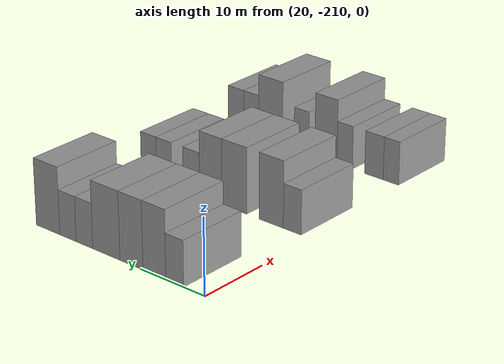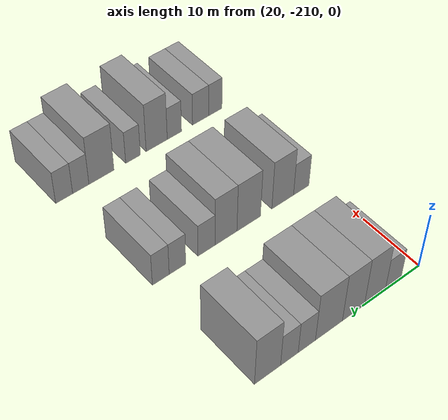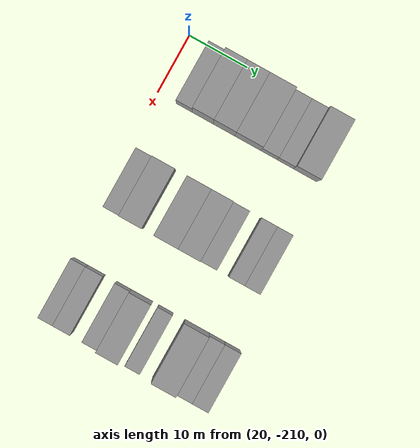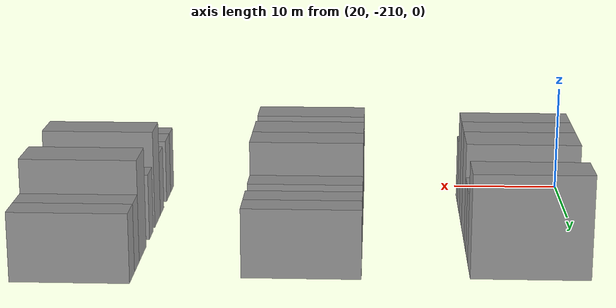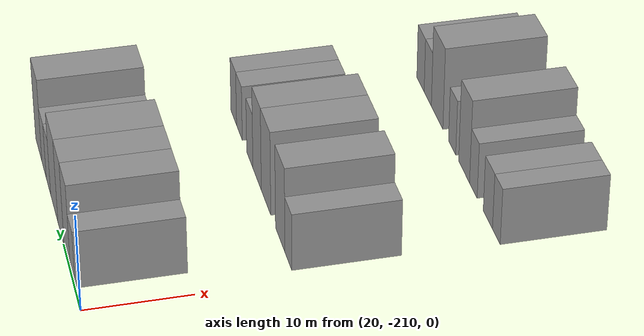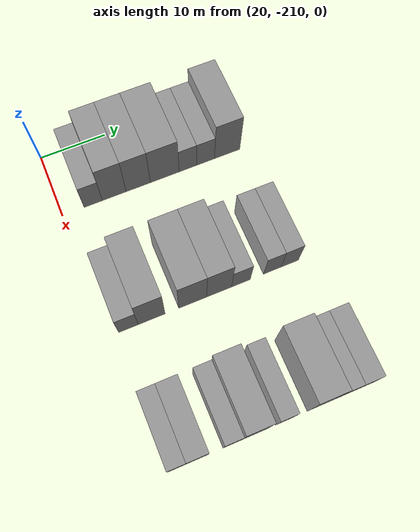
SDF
<sdf version="1.6">
 <world name="default">
  <model name="building_8">
   <static>1</static>
   <pose>25.0000 -205.3315 0 0.000000 0.000000 0.000000</pose>
   <link name="link">
    <pose>0 0 3.00 0 0 0</pose>
    <collision name="collision"><geometry><box><size>10.0000 2.7805 6.0000</size></box></geometry></collision>
    <visual name="visual">
     <cast_shadows>0</cast_shadows>
     <geometry><box><size>10.0000 2.7805 6.0000</size></box></geometry>
     <material>
      <script>
       <uri>model://grey_wall/materials/scripts</uri>
       <uri>model://grey_wall/materials/textures</uri>
       <name>vrc/grey_wall</name>
      </script>
     </material>
    </visual>
   </link>
  </model>
  <model name="building_9">
   <static>1</static>
   <pose>25.0000 -202.1189 0 0.000000 0.000000 0.000000</pose>
   <link name="link">
    <pose>0 0 4.50 0 0 0</pose>
    <collision name="collision"><geometry><box><size>10.0000 3.6448 9.0000</size></box></geometry></collision>
    <visual name="visual">
     <cast_shadows>0</cast_shadows>
     <geometry><box><size>10.0000 3.6448 9.0000</size></box></geometry>
     <material>
      <script>
       <uri>model://grey_wall/materials/scripts</uri>
       <uri>model://grey_wall/materials/textures</uri>
       <name>vrc/grey_wall</name>
      </script>
     </material>
    </visual>
   </link>
  </model>
  <model name="building_10">
   <static>1</static>
   <pose>25.0000 -198.4157 0 0.000000 0.000000 0.000000</pose>
   <link name="link">
    <pose>0 0 4.50 0 0 0</pose>
    <collision name="collision"><geometry><box><size>10.0000 3.7617 9.0000</size></box></geometry></collision>
    <visual name="visual">
     <cast_shadows>0</cast_shadows>
     <geometry><box><size>10.0000 3.7617 9.0000</size></box></geometry>
     <material>
      <script>
       <uri>model://grey_wall/materials/scripts</uri>
       <uri>model://grey_wall/materials/textures</uri>
       <name>vrc/grey_wall</name>
      </script>
     </material>
    </visual>
   </link>
  </model>
  <model name="building_11">
   <static>1</static>
   <pose>25.0000 -194.2861 0 0.000000 0.000000 0.000000</pose>
   <link name="link">
    <pose>0 0 4.50 0 0 0</pose>
    <collision name="collision"><geometry><box><size>10.0000 4.4974 9.0000</size></box></geometry></collision>
    <visual name="visual">
     <cast_shadows>0</cast_shadows>
     <geometry><box><size>10.0000 4.4974 9.0000</size></box></geometry>
     <material>
      <script>
       <uri>model://grey_wall/materials/scripts</uri>
       <uri>model://grey_wall/materials/textures</uri>
       <name>vrc/grey_wall</name>
      </script>
     </material>
    </visual>
   </link>
  </model>
  <model name="building_12">
   <static>1</static>
   <pose>25.0000 -190.6346 0 0.000000 0.000000 0.000000</pose>
   <link name="link">
    <pose>0 0 3.00 0 0 0</pose>
    <collision name="collision"><geometry><box><size>10.0000 2.8056 6.0000</size></box></geometry></collision>
    <visual name="visual">
     <cast_shadows>0</cast_shadows>
     <geometry><box><size>10.0000 2.8056 6.0000</size></box></geometry>
     <material>
      <script>
       <uri>model://grey_wall/materials/scripts</uri>
       <uri>model://grey_wall/materials/textures</uri>
       <name>vrc/grey_wall</name>
      </script>
     </material>
    </visual>
   </link>
  </model>
  <model name="building_13">
   <static>1</static>
   <pose>25.0000 -187.8267 0 0.000000 0.000000 0.000000</pose>
   <link name="link">
    <pose>0 0 3.00 0 0 0</pose>
    <collision name="collision"><geometry><box><size>10.0000 2.8101 6.0000</size></box></geometry></collision>
    <visual name="visual">
     <cast_shadows>0</cast_shadows>
     <geometry><box><size>10.0000 2.8101 6.0000</size></box></geometry>
     <material>
      <script>
       <uri>model://grey_wall/materials/scripts</uri>
       <uri>model://grey_wall/materials/textures</uri>
       <name>vrc/grey_wall</name>
      </script>
     </material>
    </visual>
   </link>
  </model>
  <model name="building_14">
   <static>1</static>
   <pose>25.0000 -184.3808 0 0.000000 0.000000 0.000000</pose>
   <link name="link">
    <pose>0 0 4.50 0 0 0</pose>
    <collision name="collision"><geometry><box><size>10.0000 4.0818 9.0000</size></box></geometry></collision>
    <visual name="visual">
     <cast_shadows>0</cast_shadows>
     <geometry><box><size>10.0000 4.0818 9.0000</size></box></geometry>
     <material>
      <script>
       <uri>model://grey_wall/materials/scripts</uri>
       <uri>model://grey_wall/materials/textures</uri>
       <name>vrc/grey_wall</name>
      </script>
     </material>
    </visual>
   </link>
  </model>
  <model name="building_122">
   <static>1</static>
   <pose>44.0000 -207.0543 0 0.000000 0.000000 0.000000</pose>
   <link name="link">
    <pose>0 0 3.00 0 0 0</pose>
    <collision name="collision"><geometry><box><size>10.0000 2.7970 6.0000</size></box></geometry></collision>
    <visual name="visual">
     <cast_shadows>0</cast_shadows>
     <geometry><box><size>10.0000 2.7970 6.0000</size></box></geometry>
     <material>
      <script>
       <uri>model://grey_wall/materials/scripts</uri>
       <uri>model://grey_wall/materials/textures</uri>
       <name>vrc/grey_wall</name>
      </script>
     </material>
    </visual>
   </link>
  </model>
  <model name="building_123">
   <static>1</static>
   <pose>44.0000 -203.7124 0 0.000000 0.000000 0.000000</pose>
   <link name="link">
    <pose>0 0 4.50 0 0 0</pose>
    <collision name="collision"><geometry><box><size>10.0000 3.8867 9.0000</size></box></geometry></collision>
    <visual name="visual">
     <cast_shadows>0</cast_shadows>
     <geometry><box><size>10.0000 3.8867 9.0000</size></box></geometry>
     <material>
      <script>
       <uri>model://grey_wall/materials/scripts</uri>
       <uri>model://grey_wall/materials/textures</uri>
       <name>vrc/grey_wall</name>
      </script>
     </material>
    </visual>
   </link>
  </model>
  <model name="building_124">
   <static>1</static>
   <pose>44.0000 -197.7276 0 0.000000 0.000000 0.000000</pose>
   <link name="link">
    <pose>0 0 4.50 0 0 0</pose>
    <collision name="collision"><geometry><box><size>10.0000 4.0828 9.0000</size></box></geometry></collision>
    <visual name="visual">
     <cast_shadows>0</cast_shadows>
     <geometry><box><size>10.0000 4.0828 9.0000</size></box></geometry>
     <material>
      <script>
       <uri>model://grey_wall/materials/scripts</uri>
       <uri>model://grey_wall/materials/textures</uri>
       <name>vrc/grey_wall</name>
      </script>
     </material>
    </visual>
   </link>
  </model>
  <model name="building_125">
   <static>1</static>
   <pose>44.0000 -193.8281 0 0.000000 0.000000 0.000000</pose>
   <link name="link">
    <pose>0 0 4.50 0 0 0</pose>
    <collision name="collision"><geometry><box><size>10.0000 3.7161 9.0000</size></box></geometry></collision>
    <visual name="visual">
     <cast_shadows>0</cast_shadows>
     <geometry><box><size>10.0000 3.7161 9.0000</size></box></geometry>
     <material>
      <script>
       <uri>model://grey_wall/materials/scripts</uri>
       <uri>model://grey_wall/materials/textures</uri>
       <name>vrc/grey_wall</name>
      </script>
     </material>
    </visual>
   </link>
  </model>
  <model name="building_126">
   <static>1</static>
   <pose>44.0000 -190.5547 0 0.000000 0.000000 0.000000</pose>
   <link name="link">
    <pose>0 0 3.00 0 0 0</pose>
    <collision name="collision"><geometry><box><size>10.0000 2.8307 6.0000</size></box></geometry></collision>
    <visual name="visual">
     <cast_shadows>0</cast_shadows>
     <geometry><box><size>10.0000 2.8307 6.0000</size></box></geometry>
     <material>
      <script>
       <uri>model://grey_wall/materials/scripts</uri>
       <uri>model://grey_wall/materials/textures</uri>
       <name>vrc/grey_wall</name>
      </script>
     </material>
    </visual>
   </link>
  </model>
  <model name="building_127">
   <static>1</static>
   <pose>44.0000 -185.8024 0 0.000000 0.000000 0.000000</pose>
   <link name="link">
    <pose>0 0 3.00 0 0 0</pose>
    <collision name="collision"><geometry><box><size>10.0000 2.6739 6.0000</size></box></geometry></collision>
    <visual name="visual">
     <cast_shadows>0</cast_shadows>
     <geometry><box><size>10.0000 2.6739 6.0000</size></box></geometry>
     <material>
      <script>
       <uri>model://grey_wall/materials/scripts</uri>
       <uri>model://grey_wall/materials/textures</uri>
       <name>vrc/grey_wall</name>
      </script>
     </material>
    </visual>
   </link>
  </model>
  <model name="building_128">
   <static>1</static>
   <pose>44.0000 -183.1321 0 0.000000 0.000000 0.000000</pose>
   <link name="link">
    <pose>0 0 3.00 0 0 0</pose>
    <collision name="collision"><geometry><box><size>10.0000 2.6668 6.0000</size></box></geometry></collision>
    <visual name="visual">
     <cast_shadows>0</cast_shadows>
     <geometry><box><size>10.0000 2.6668 6.0000</size></box></geometry>
     <material>
      <script>
       <uri>model://grey_wall/materials/scripts</uri>
       <uri>model://grey_wall/materials/textures</uri>
       <name>vrc/grey_wall</name>
      </script>
     </material>
    </visual>
   </link>
  </model>
  <model name="building_238">
   <static>1</static>
   <pose>63.0000 -207.6391 0 0.000000 0.000000 0.000000</pose>
   <link name="link">
    <pose>0 0 3.00 0 0 0</pose>
    <collision name="collision"><geometry><box><size>10.0000 2.4623 6.0000</size></box></geometry></collision>
    <visual name="visual">
     <cast_shadows>0</cast_shadows>
     <geometry><box><size>10.0000 2.4623 6.0000</size></box></geometry>
     <material>
      <script>
       <uri>model://grey_wall/materials/scripts</uri>
       <uri>model://grey_wall/materials/textures</uri>
       <name>vrc/grey_wall</name>
      </script>
     </material>
    </visual>
   </link>
  </model>
  <model name="building_239">
   <static>1</static>
   <pose>63.0000 -204.9163 0 0.000000 0.000000 0.000000</pose>
   <link name="link">
    <pose>0 0 3.00 0 0 0</pose>
    <collision name="collision"><geometry><box><size>10.0000 2.9834 6.0000</size></box></geometry></collision>
    <visual name="visual">
     <cast_shadows>0</cast_shadows>
     <geometry><box><size>10.0000 2.9834 6.0000</size></box></geometry>
     <material>
      <script>
       <uri>model://grey_wall/materials/scripts</uri>
       <uri>model://grey_wall/materials/textures</uri>
       <name>vrc/grey_wall</name>
      </script>
     </material>
    </visual>
   </link>
  </model>
  <model name="building_240">
   <static>1</static>
   <pose>63.0000 -200.1450 0 0.000000 0.000000 0.000000</pose>
   <link name="link">
    <pose>0 0 3.00 0 0 0</pose>
    <collision name="collision"><geometry><box><size>10.0000 2.5592 6.0000</size></box></geometry></collision>
    <visual name="visual">
     <cast_shadows>0</cast_shadows>
     <geometry><box><size>10.0000 2.5592 6.0000</size></box></geometry>
     <material>
      <script>
       <uri>model://grey_wall/materials/scripts</uri>
       <uri>model://grey_wall/materials/textures</uri>
       <name>vrc/grey_wall</name>
      </script>
     </material>
    </visual>
   </link>
  </model>
  <model name="building_241">
   <static>1</static>
   <pose>63.0000 -197.0046 0 0.000000 0.000000 0.000000</pose>
   <link name="link">
    <pose>0 0 4.50 0 0 0</pose>
    <collision name="collision"><geometry><box><size>10.0000 3.7216 9.0000</size></box></geometry></collision>
    <visual name="visual">
     <cast_shadows>0</cast_shadows>
     <geometry><box><size>10.0000 3.7216 9.0000</size></box></geometry>
     <material>
      <script>
       <uri>model://grey_wall/materials/scripts</uri>
       <uri>model://grey_wall/materials/textures</uri>
       <name>vrc/grey_wall</name>
      </script>
     </material>
    </visual>
   </link>
  </model>
  <model name="building_242">
   <static>1</static>
   <pose>63.0000 -192.8777 0 0.000000 0.000000 0.000000</pose>
   <link name="link">
    <pose>0 0 3.00 0 0 0</pose>
    <collision name="collision"><geometry><box><size>10.0000 2.5321 6.0000</size></box></geometry></collision>
    <visual name="visual">
     <cast_shadows>0</cast_shadows>
     <geometry><box><size>10.0000 2.5321 6.0000</size></box></geometry>
     <material>
      <script>
       <uri>model://grey_wall/materials/scripts</uri>
       <uri>model://grey_wall/materials/textures</uri>
       <name>vrc/grey_wall</name>
      </script>
     </material>
    </visual>
   </link>
  </model>
  <model name="building_243">
   <static>1</static>
   <pose>63.0000 -187.5157 0 0.000000 0.000000 0.000000</pose>
   <link name="link">
    <pose>0 0 4.50 0 0 0</pose>
    <collision name="collision"><geometry><box><size>10.0000 4.1919 9.0000</size></box></geometry></collision>
    <visual name="visual">
     <cast_shadows>0</cast_shadows>
     <geometry><box><size>10.0000 4.1919 9.0000</size></box></geometry>
     <material>
      <script>
       <uri>model://grey_wall/materials/scripts</uri>
       <uri>model://grey_wall/materials/textures</uri>
       <name>vrc/grey_wall</name>
      </script>
     </material>
    </visual>
   </link>
  </model>
  <model name="building_244">
   <static>1</static>
   <pose>63.0000 -184.0851 0 0.000000 0.000000 0.000000</pose>
   <link name="link">
    <pose>0 0 3.00 0 0 0</pose>
    <collision name="collision"><geometry><box><size>10.0000 2.6694 6.0000</size></box></geometry></collision>
    <visual name="visual">
     <cast_shadows>0</cast_shadows>
     <geometry><box><size>10.0000 2.6694 6.0000</size></box></geometry>
     <material>
      <script>
       <uri>model://grey_wall/materials/scripts</uri>
       <uri>model://grey_wall/materials/textures</uri>
       <name>vrc/grey_wall</name>
      </script>
     </material>
    </visual>
   </link>
  </model>
  <model name="building_245">
   <static>1</static>
   <pose>63.0000 -181.3725 0 0.000000 0.000000 0.000000</pose>
   <link name="link">
    <pose>0 0 3.00 0 0 0</pose>
    <collision name="collision"><geometry><box><size>10.0000 2.7557 6.0000</size></box></geometry></collision>
    <visual name="visual">
     <cast_shadows>0</cast_shadows>
     <geometry><box><size>10.0000 2.7557 6.0000</size></box></geometry>
     <material>
      <script>
       <uri>model://grey_wall/materials/scripts</uri>
       <uri>model://grey_wall/materials/textures</uri>
       <name>vrc/grey_wall</name>
      </script>
     </material>
    </visual>
   </link>
  </model>
 </world>
</sdf>
